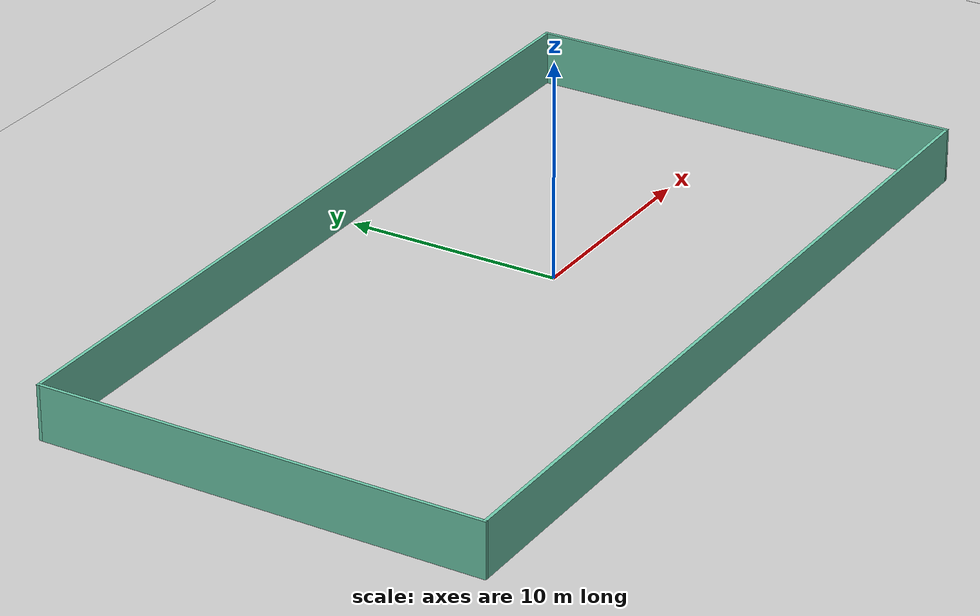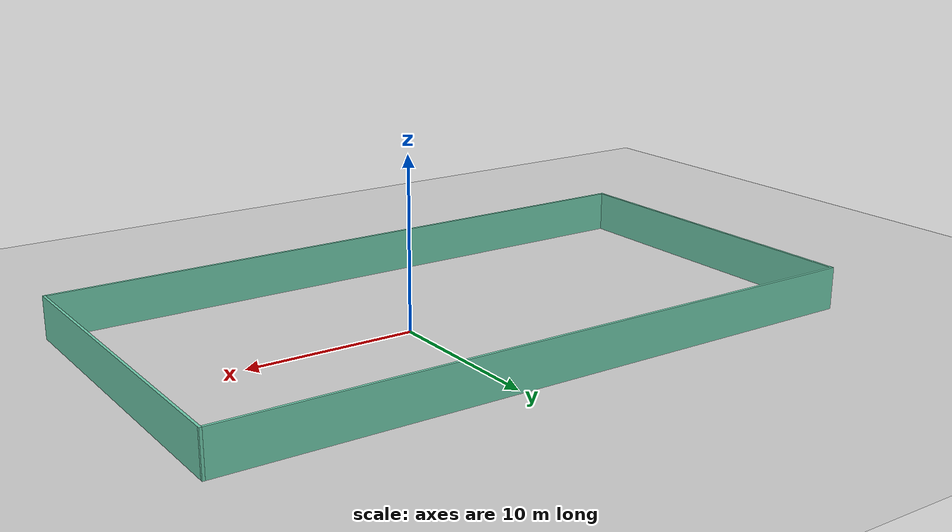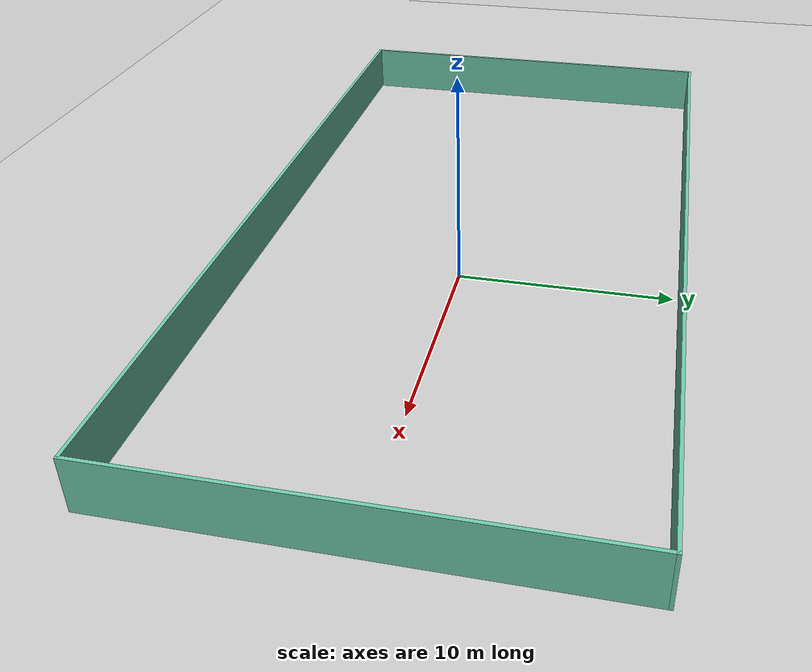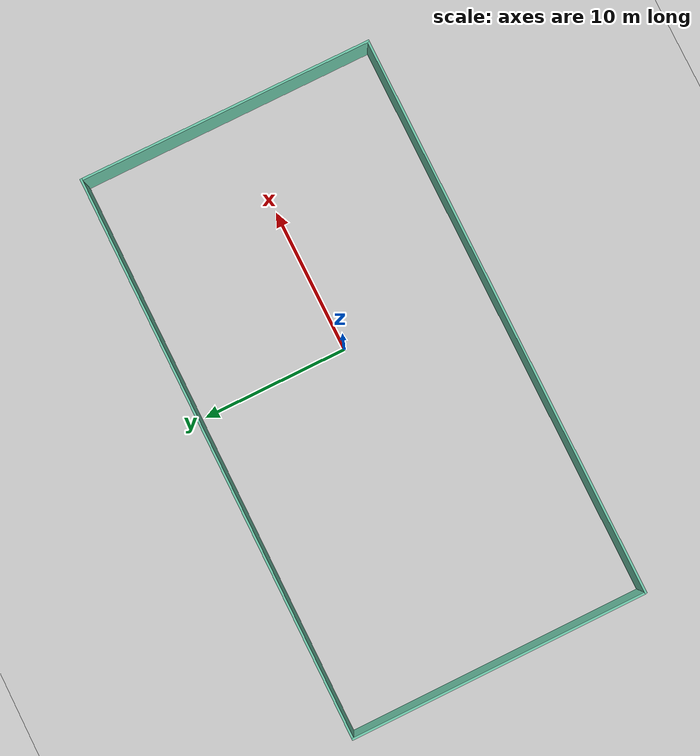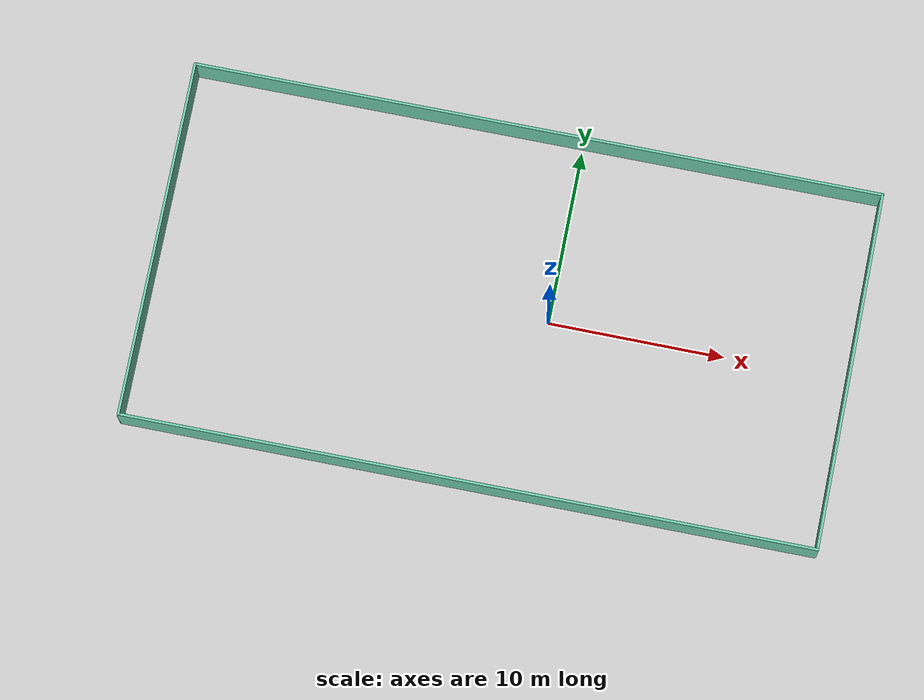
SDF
<sdf version="1.7">
 <world name="default">
  <model name="ground_plane">
   <static>1</static>
   <link name="link">
    <collision name="collision">
     <geometry><plane><normal>0 0 1</normal><size>100 100</size></plane></geometry>
     <surface>
      <contact><collide_bitmask>65535</collide_bitmask></contact>
      <friction><ode><mu>100</mu><mu2>50</mu2></ode></friction>
     </surface>
    </collision>
    <visual name="visual">
     <cast_shadows>0</cast_shadows>
     <geometry><plane><normal>0 0 1</normal><size>100 100</size></plane></geometry>
     <material>
      <script><uri>file://media/materials/scripts/gazebo.material</uri><name>Gazebo/Grey</name></script>
     </material>
    </visual>
   </link>
  </model>
  <model name="lab_walls">
   <pose>-2.62246 0.11464 0 0 -0 0</pose>
   <link name="Wall_0">
    <collision name="Wall_0_Collision">
     <geometry><box><size>20.5 0.15 2.5</size></box></geometry>
     <pose>0 0 1.25 0 -0 0</pose>
    </collision>
    <visual name="Wall_0_Visual">
     <pose>0 0 1.25 0 -0 0</pose>
     <geometry><box><size>20.5 0.15 2.5</size></box></geometry>
     <material>
      <script><uri>file://media/materials/scripts/gazebo.material</uri><name>Gazebo/Grey</name></script>
      <ambient>0.435294 0.796078 0.67451 1</ambient>
     </material>
     <meta><layer>0</layer></meta>
    </visual>
    <pose>-19.55 0 0 0 -0 -1.5708</pose>
   </link>
   <link name="Wall_1">
    <collision name="Wall_1_Collision">
     <geometry><box><size>39.25 0.15 2.5</size></box></geometry>
     <pose>0 0 1.25 0 -0 0</pose>
    </collision>
    <visual name="Wall_1_Visual">
     <pose>0 0 1.25 0 -0 0</pose>
     <geometry><box><size>39.25 0.15 2.5</size></box></geometry>
     <material>
      <script><uri>file://media/materials/scripts/gazebo.material</uri><name>Gazebo/Grey</name></script>
      <ambient>0.435294 0.796078 0.67451 1</ambient>
     </material>
     <meta><layer>0</layer></meta>
    </visual>
    <pose>0 -10.175 0 0 -0 0</pose>
   </link>
   <link name="Wall_2">
    <collision name="Wall_2_Collision">
     <geometry><box><size>20.5 0.15 2.5</size></box></geometry>
     <pose>0 0 1.25 0 -0 0</pose>
    </collision>
    <visual name="Wall_2_Visual">
     <pose>0 0 1.25 0 -0 0</pose>
     <geometry><box><size>20.5 0.15 2.5</size></box></geometry>
     <material>
      <script><uri>file://media/materials/scripts/gazebo.material</uri><name>Gazebo/Grey</name></script>
      <ambient>0.435294 0.796078 0.67451 1</ambient>
     </material>
     <meta><layer>0</layer></meta>
    </visual>
    <pose>19.55 0 0 0 -0 1.5708</pose>
   </link>
   <link name="Wall_3">
    <collision name="Wall_3_Collision">
     <geometry><box><size>39.25 0.15 2.5</size></box></geometry>
     <pose>0 0 1.25 0 -0 0</pose>
    </collision>
    <visual name="Wall_3_Visual">
     <pose>0 0 1.25 0 -0 0</pose>
     <geometry><box><size>39.25 0.15 2.5</size></box></geometry>
     <material>
      <script><uri>file://media/materials/scripts/gazebo.material</uri><name>Gazebo/Grey</name></script>
      <ambient>0.435294 0.796078 0.67451 1</ambient>
     </material>
     <meta><layer>0</layer></meta>
    </visual>
    <pose>0 10.175 0 0 -0 3.14159</pose>
   </link>
   <static>1</static>
  </model>
 </world>
</sdf>
